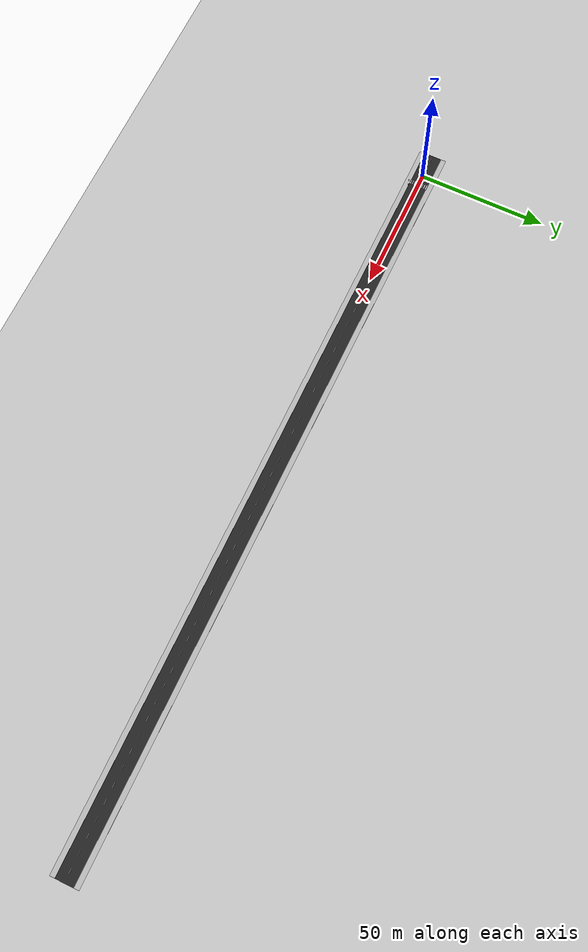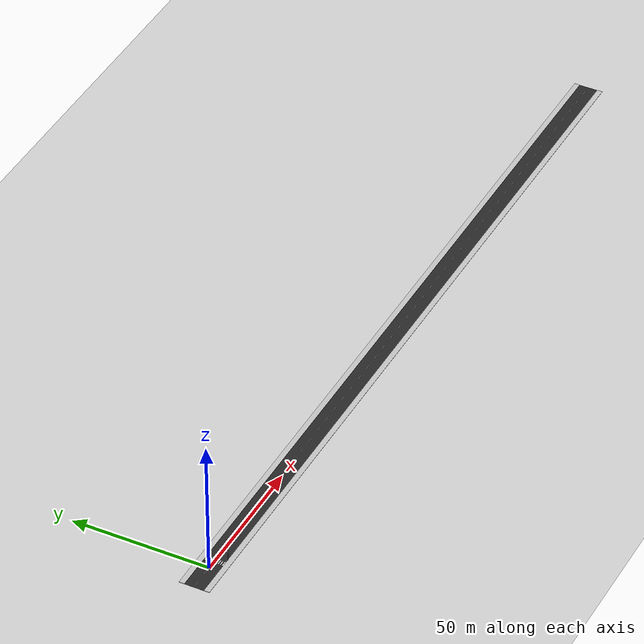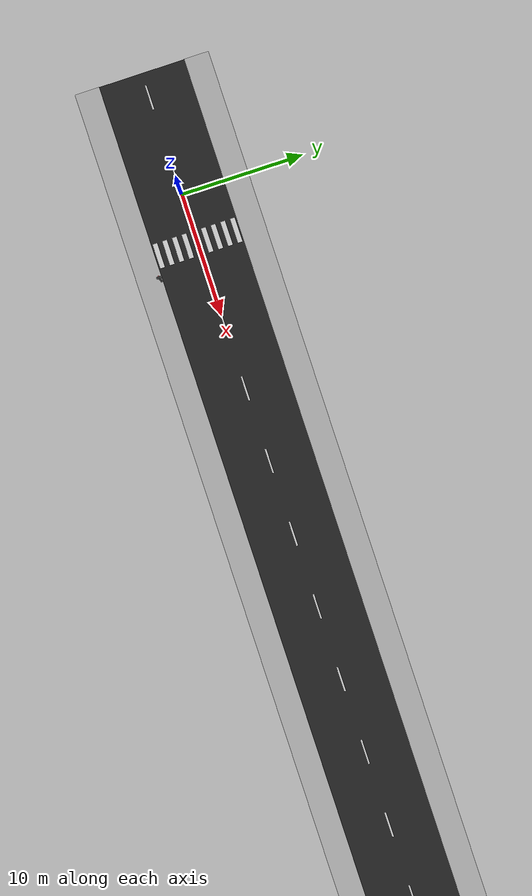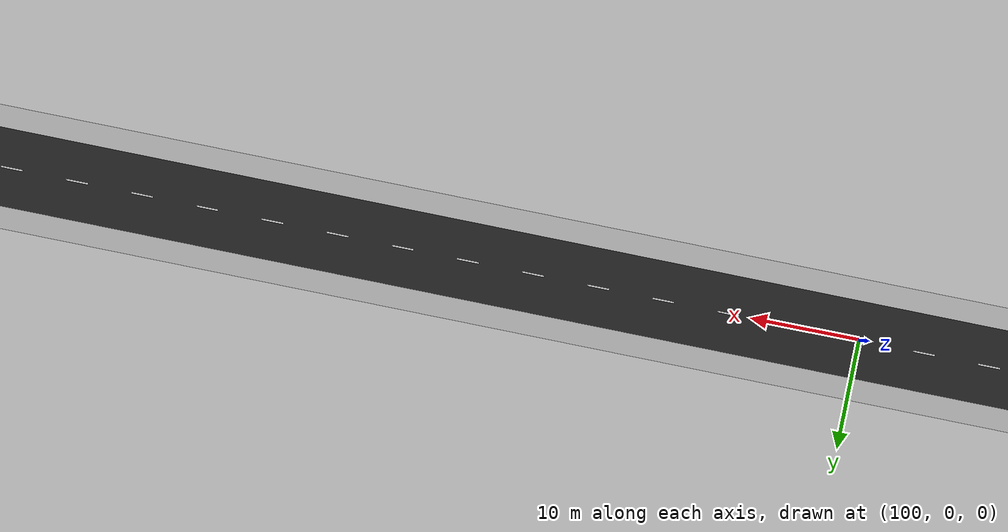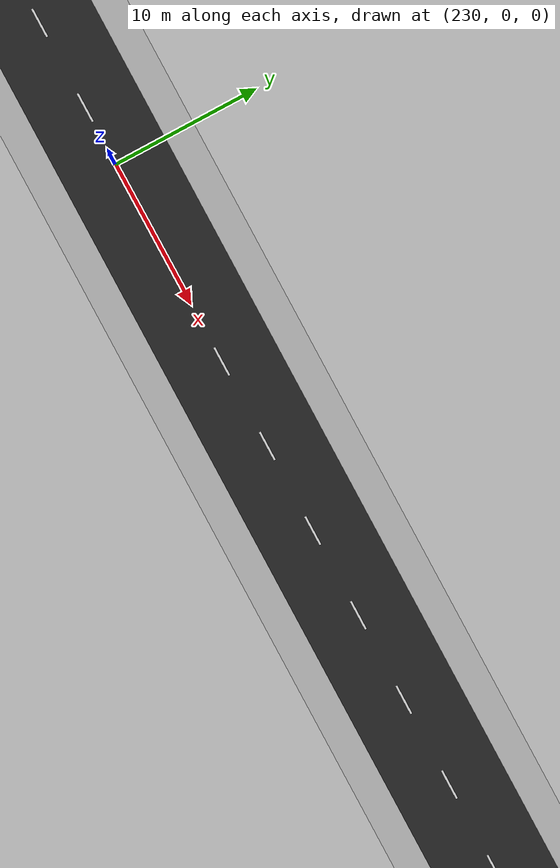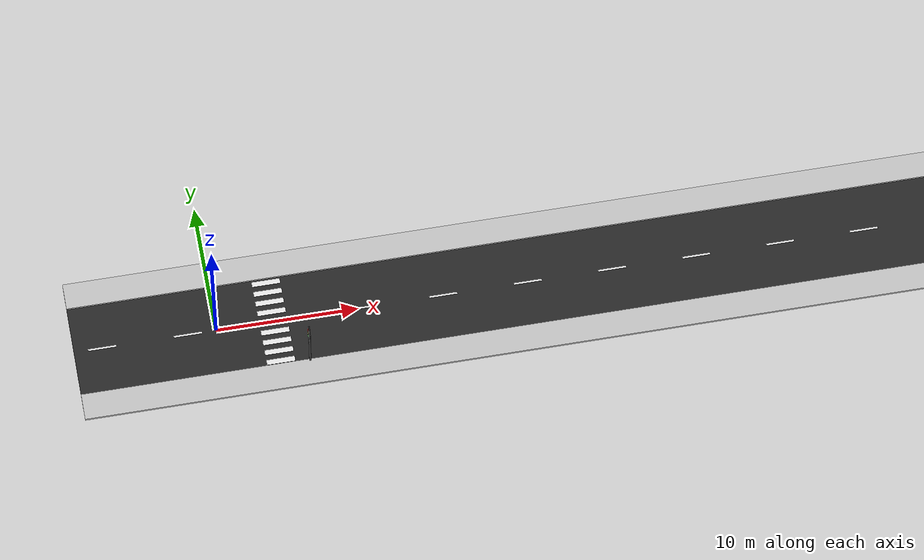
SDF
<sdf version="1.9">
 <world name="street">
  <physics type="ode">
   <max_step_size>0.01</max_step_size>
   <real_time_factor>1.0</real_time_factor>
   <real_time_update_rate>100</real_time_update_rate>
  </physics>
  <gravity>0 0 -9.8</gravity>
  <magnetic_field>6e-06 2.3e-05 -4.2e-05</magnetic_field>
  <atmosphere type="adiabatic"/>
  <scene>
   <grid>false</grid>
   <ambient>0.4 0.4 0.4 1</ambient>
   <background>0.7 0.7 0.7 1</background>
   <shadows>false</shadows>
  </scene>
  <model name="ground_plane">
   <static>true</static>
   <link name="link">
    <collision name="collision">
     <geometry><plane><normal>0 0 1</normal><size>1 1</size></plane></geometry>
    </collision>
    <visual name="visual">
     <geometry><plane><normal>0 0 1</normal><size>500 500</size></plane></geometry>
     <material>
      <ambient>0.8 0.8 0.8 1</ambient>
      <diffuse>0.8 0.8 0.8 1</diffuse>
      <specular>0.8 0.8 0.8 1</specular>
     </material>
    </visual>
    <inertial>
     <mass>1</mass>
     <inertia><ixx>1</ixx><ixy>0</ixy><ixz>0</ixz><iyy>1</iyy><iyz>0</iyz><izz>1</izz></inertia>
    </inertial>
   </link>
  </model>
  <light name="sunUTC" type="directional">
   <pose>0 0 500 0 -0 0</pose>
   <intensity>1</intensity>
   <direction>0.001 0.625 -0.78</direction>
   <diffuse>0.904 0.904 0.904 1</diffuse>
   <specular>0.271 0.271 0.271 1</specular>
   <attenuation><range>2000</range><linear>0</linear><constant>1</constant><quadratic>0</quadratic></attenuation>
   <spot><inner_angle>0</inner_angle><outer_angle>0</outer_angle><falloff>0</falloff></spot>
  </light>
  <model name="street">
   <static>true</static>
   <link name="link">
    <visual name="road_surface">
     <pose>140 0 0.01 0 0 0</pose>
     <geometry><box><size>300 7 0.02</size></box></geometry>
     <material>
      <ambient>0.15 0.15 0.15 1</ambient>
      <diffuse>0.15 0.15 0.15 1</diffuse>
      <specular>0.1 0.1 0.1 1</specular>
     </material>
    </visual>
    <visual name="stripe_1">
     <pose>-8 0 0.025 0 0 0</pose>
     <geometry><box><size>2 0.15 0.01</size></box></geometry>
     <material><ambient>0.9 0.9 0.9 1</ambient><diffuse>0.9 0.9 0.9 1</diffuse></material>
    </visual>
    <visual name="stripe_2">
     <pose>-2 0 0.025 0 0 0</pose>
     <geometry><box><size>2 0.15 0.01</size></box></geometry>
     <material><ambient>0.9 0.9 0.9 1</ambient><diffuse>0.9 0.9 0.9 1</diffuse></material>
    </visual>
    <visual name="crosswalk_1">
     <pose>4 -3.2 0.025 0 0 0</pose>
     <geometry><box><size>2 0.4 0.01</size></box></geometry>
     <material><ambient>0.9 0.9 0.9 1</ambient><diffuse>0.9 0.9 0.9 1</diffuse></material>
    </visual>
    <visual name="crosswalk_2">
     <pose>4 -2.4 0.025 0 0 0</pose>
     <geometry><box><size>2 0.4 0.01</size></box></geometry>
     <material><ambient>0.9 0.9 0.9 1</ambient><diffuse>0.9 0.9 0.9 1</diffuse></material>
    </visual>
    <visual name="crosswalk_3">
     <pose>4 -1.6 0.025 0 0 0</pose>
     <geometry><box><size>2 0.4 0.01</size></box></geometry>
     <material><ambient>0.9 0.9 0.9 1</ambient><diffuse>0.9 0.9 0.9 1</diffuse></material>
    </visual>
    <visual name="crosswalk_4">
     <pose>4 -0.8 0.025 0 0 0</pose>
     <geometry><box><size>2 0.4 0.01</size></box></geometry>
     <material><ambient>0.9 0.9 0.9 1</ambient><diffuse>0.9 0.9 0.9 1</diffuse></material>
    </visual>
    <visual name="crosswalk_5">
     <pose>4 0 0.025 0 0 0</pose>
     <geometry><box><size>2 0.4 0.01</size></box></geometry>
     <material><ambient>0.9 0.9 0.9 1</ambient><diffuse>0.9 0.9 0.9 1</diffuse></material>
    </visual>
    <visual name="crosswalk_6">
     <pose>4 0.8 0.025 0 0 0</pose>
     <geometry><box><size>2 0.4 0.01</size></box></geometry>
     <material><ambient>0.9 0.9 0.9 1</ambient><diffuse>0.9 0.9 0.9 1</diffuse></material>
    </visual>
    <visual name="crosswalk_7">
     <pose>4 1.6 0.025 0 0 0</pose>
     <geometry><box><size>2 0.4 0.01</size></box></geometry>
     <material><ambient>0.9 0.9 0.9 1</ambient><diffuse>0.9 0.9 0.9 1</diffuse></material>
    </visual>
    <visual name="crosswalk_8">
     <pose>4 2.4 0.025 0 0 0</pose>
     <geometry><box><size>2 0.4 0.01</size></box></geometry>
     <material><ambient>0.9 0.9 0.9 1</ambient><diffuse>0.9 0.9 0.9 1</diffuse></material>
    </visual>
    <visual name="crosswalk_9">
     <pose>4 3.2 0.025 0 0 0</pose>
     <geometry><box><size>2 0.4 0.01</size></box></geometry>
     <material><ambient>0.9 0.9 0.9 1</ambient><diffuse>0.9 0.9 0.9 1</diffuse></material>
    </visual>
    <visual name="stripe_4">
     <pose>10 0 0.025 0 0 0</pose>
     <geometry><box><size>2 0.15 0.01</size></box></geometry>
     <material><ambient>0.9 0.9 0.9 1</ambient><diffuse>0.9 0.9 0.9 1</diffuse></material>
    </visual>
    <visual name="stripe_5">
     <pose>16 0 0.025 0 0 0</pose>
     <geometry><box><size>2 0.15 0.01</size></box></geometry>
     <material><ambient>0.9 0.9 0.9 1</ambient><diffuse>0.9 0.9 0.9 1</diffuse></material>
    </visual>
    <visual name="stripe_6">
     <pose>22 0 0.025 0 0 0</pose>
     <geometry><box><size>2 0.15 0.01</size></box></geometry>
     <material><ambient>0.9 0.9 0.9 1</ambient><diffuse>0.9 0.9 0.9 1</diffuse></material>
    </visual>
    <visual name="stripe_7">
     <pose>28 0 0.025 0 0 0</pose>
     <geometry><box><size>2 0.15 0.01</size></box></geometry>
     <material><ambient>0.9 0.9 0.9 1</ambient><diffuse>0.9 0.9 0.9 1</diffuse></material>
    </visual>
    <visual name="stripe_8">
     <pose>34 0 0.025 0 0 0</pose>
     <geometry><box><size>2 0.15 0.01</size></box></geometry>
     <material><ambient>0.9 0.9 0.9 1</ambient><diffuse>0.9 0.9 0.9 1</diffuse></material>
    </visual>
    <visual name="stripe_9">
     <pose>40 0 0.025 0 0 0</pose>
     <geometry><box><size>2 0.15 0.01</size></box></geometry>
     <material><ambient>0.9 0.9 0.9 1</ambient><diffuse>0.9 0.9 0.9 1</diffuse></material>
    </visual>
    <visual name="stripe_10">
     <pose>46 0 0.025 0 0 0</pose>
     <geometry><box><size>2 0.15 0.01</size></box></geometry>
     <material><ambient>0.9 0.9 0.9 1</ambient><diffuse>0.9 0.9 0.9 1</diffuse></material>
    </visual>
    <visual name="stripe_11">
     <pose>52 0 0.025 0 0 0</pose>
     <geometry><box><size>2 0.15 0.01</size></box></geometry>
     <material><ambient>0.9 0.9 0.9 1</ambient><diffuse>0.9 0.9 0.9 1</diffuse></material>
    </visual>
    <visual name="stripe_12">
     <pose>58 0 0.025 0 0 0</pose>
     <geometry><box><size>2 0.15 0.01</size></box></geometry>
     <material><ambient>0.9 0.9 0.9 1</ambient><diffuse>0.9 0.9 0.9 1</diffuse></material>
    </visual>
    <visual name="stripe_13">
     <pose>64 0 0.025 0 0 0</pose>
     <geometry><box><size>2 0.15 0.01</size></box></geometry>
     <material><ambient>0.9 0.9 0.9 1</ambient><diffuse>0.9 0.9 0.9 1</diffuse></material>
    </visual>
    <visual name="stripe_14">
     <pose>70 0 0.025 0 0 0</pose>
     <geometry><box><size>2 0.15 0.01</size></box></geometry>
     <material><ambient>0.9 0.9 0.9 1</ambient><diffuse>0.9 0.9 0.9 1</diffuse></material>
    </visual>
    <visual name="stripe_15">
     <pose>76 0 0.025 0 0 0</pose>
     <geometry><box><size>2 0.15 0.01</size></box></geometry>
     <material><ambient>0.9 0.9 0.9 1</ambient><diffuse>0.9 0.9 0.9 1</diffuse></material>
    </visual>
    <visual name="stripe_16">
     <pose>82 0 0.025 0 0 0</pose>
     <geometry><box><size>2 0.15 0.01</size></box></geometry>
     <material><ambient>0.9 0.9 0.9 1</ambient><diffuse>0.9 0.9 0.9 1</diffuse></material>
    </visual>
    <visual name="stripe_17">
     <pose>88 0 0.025 0 0 0</pose>
     <geometry><box><size>2 0.15 0.01</size></box></geometry>
     <material><ambient>0.9 0.9 0.9 1</ambient><diffuse>0.9 0.9 0.9 1</diffuse></material>
    </visual>
    <visual name="stripe_18">
     <pose>94 0 0.025 0 0 0</pose>
     <geometry><box><size>2 0.15 0.01</size></box></geometry>
     <material><ambient>0.9 0.9 0.9 1</ambient><diffuse>0.9 0.9 0.9 1</diffuse></material>
    </visual>
    <visual name="stripe_19">
     <pose>100 0 0.025 0 0 0</pose>
     <geometry><box><size>2 0.15 0.01</size></box></geometry>
     <material><ambient>0.9 0.9 0.9 1</ambient><diffuse>0.9 0.9 0.9 1</diffuse></material>
    </visual>
    <visual name="stripe_20">
     <pose>106 0 0.025 0 0 0</pose>
     <geometry><box><size>2 0.15 0.01</size></box></geometry>
     <material><ambient>0.9 0.9 0.9 1</ambient><diffuse>0.9 0.9 0.9 1</diffuse></material>
    </visual>
    <visual name="stripe_21">
     <pose>112 0 0.025 0 0 0</pose>
     <geometry><box><size>2 0.15 0.01</size></box></geometry>
     <material><ambient>0.9 0.9 0.9 1</ambient><diffuse>0.9 0.9 0.9 1</diffuse></material>
    </visual>
    <visual name="stripe_22">
     <pose>118 0 0.025 0 0 0</pose>
     <geometry><box><size>2 0.15 0.01</size></box></geometry>
     <material><ambient>0.9 0.9 0.9 1</ambient><diffuse>0.9 0.9 0.9 1</diffuse></material>
    </visual>
    <visual name="stripe_23">
     <pose>124 0 0.025 0 0 0</pose>
     <geometry><box><size>2 0.15 0.01</size></box></geometry>
     <material><ambient>0.9 0.9 0.9 1</ambient><diffuse>0.9 0.9 0.9 1</diffuse></material>
    </visual>
    <visual name="stripe_24">
     <pose>130 0 0.025 0 0 0</pose>
     <geometry><box><size>2 0.15 0.01</size></box></geometry>
     <material><ambient>0.9 0.9 0.9 1</ambient><diffuse>0.9 0.9 0.9 1</diffuse></material>
    </visual>
    <visual name="stripe_25">
     <pose>136 0 0.025 0 0 0</pose>
     <geometry><box><size>2 0.15 0.01</size></box></geometry>
     <material><ambient>0.9 0.9 0.9 1</ambient><diffuse>0.9 0.9 0.9 1</diffuse></material>
    </visual>
    <visual name="stripe_26">
     <pose>142 0 0.025 0 0 0</pose>
     <geometry><box><size>2 0.15 0.01</size></box></geometry>
     <material><ambient>0.9 0.9 0.9 1</ambient><diffuse>0.9 0.9 0.9 1</diffuse></material>
    </visual>
    <visual name="stripe_27">
     <pose>148 0 0.025 0 0 0</pose>
     <geometry><box><size>2 0.15 0.01</size></box></geometry>
     <material><ambient>0.9 0.9 0.9 1</ambient><diffuse>0.9 0.9 0.9 1</diffuse></material>
    </visual>
    <visual name="stripe_28">
     <pose>154 0 0.025 0 0 0</pose>
     <geometry><box><size>2 0.15 0.01</size></box></geometry>
     <material><ambient>0.9 0.9 0.9 1</ambient><diffuse>0.9 0.9 0.9 1</diffuse></material>
    </visual>
    <visual name="stripe_29">
     <pose>160 0 0.025 0 0 0</pose>
     <geometry><box><size>2 0.15 0.01</size></box></geometry>
     <material><ambient>0.9 0.9 0.9 1</ambient><diffuse>0.9 0.9 0.9 1</diffuse></material>
    </visual>
    <visual name="stripe_30">
     <pose>166 0 0.025 0 0 0</pose>
     <geometry><box><size>2 0.15 0.01</size></box></geometry>
     <material><ambient>0.9 0.9 0.9 1</ambient><diffuse>0.9 0.9 0.9 1</diffuse></material>
    </visual>
    <visual name="stripe_31">
     <pose>172 0 0.025 0 0 0</pose>
     <geometry><box><size>2 0.15 0.01</size></box></geometry>
     <material><ambient>0.9 0.9 0.9 1</ambient><diffuse>0.9 0.9 0.9 1</diffuse></material>
    </visual>
    <visual name="stripe_32">
     <pose>178 0 0.025 0 0 0</pose>
     <geometry><box><size>2 0.15 0.01</size></box></geometry>
     <material><ambient>0.9 0.9 0.9 1</ambient><diffuse>0.9 0.9 0.9 1</diffuse></material>
    </visual>
    <visual name="stripe_33">
     <pose>184 0 0.025 0 0 0</pose>
     <geometry><box><size>2 0.15 0.01</size></box></geometry>
     <material><ambient>0.9 0.9 0.9 1</ambient><diffuse>0.9 0.9 0.9 1</diffuse></material>
    </visual>
    <visual name="stripe_34">
     <pose>190 0 0.025 0 0 0</pose>
     <geometry><box><size>2 0.15 0.01</size></box></geometry>
     <material><ambient>0.9 0.9 0.9 1</ambient><diffuse>0.9 0.9 0.9 1</diffuse></material>
    </visual>
    <visual name="stripe_35">
     <pose>196 0 0.025 0 0 0</pose>
     <geometry><box><size>2 0.15 0.01</size></box></geometry>
     <material><ambient>0.9 0.9 0.9 1</ambient><diffuse>0.9 0.9 0.9 1</diffuse></material>
    </visual>
    <visual name="stripe_36">
     <pose>202 0 0.025 0 0 0</pose>
     <geometry><box><size>2 0.15 0.01</size></box></geometry>
     <material><ambient>0.9 0.9 0.9 1</ambient><diffuse>0.9 0.9 0.9 1</diffuse></material>
    </visual>
    <visual name="stripe_37">
     <pose>208 0 0.025 0 0 0</pose>
     <geometry><box><size>2 0.15 0.01</size></box></geometry>
     <material><ambient>0.9 0.9 0.9 1</ambient><diffuse>0.9 0.9 0.9 1</diffuse></material>
    </visual>
    <visual name="stripe_38">
     <pose>214 0 0.025 0 0 0</pose>
     <geometry><box><size>2 0.15 0.01</size></box></geometry>
     <material><ambient>0.9 0.9 0.9 1</ambient><diffuse>0.9 0.9 0.9 1</diffuse></material>
    </visual>
    <visual name="stripe_39">
     <pose>220 0 0.025 0 0 0</pose>
     <geometry><box><size>2 0.15 0.01</size></box></geometry>
     <material><ambient>0.9 0.9 0.9 1</ambient><diffuse>0.9 0.9 0.9 1</diffuse></material>
    </visual>
    <visual name="stripe_40">
     <pose>226 0 0.025 0 0 0</pose>
     <geometry><box><size>2 0.15 0.01</size></box></geometry>
     <material><ambient>0.9 0.9 0.9 1</ambient><diffuse>0.9 0.9 0.9 1</diffuse></material>
    </visual>
    <visual name="stripe_41">
     <pose>232 0 0.025 0 0 0</pose>
     <geometry><box><size>2 0.15 0.01</size></box></geometry>
     <material><ambient>0.9 0.9 0.9 1</ambient><diffuse>0.9 0.9 0.9 1</diffuse></material>
    </visual>
    <visual name="stripe_42">
     <pose>238 0 0.025 0 0 0</pose>
     <geometry><box><size>2 0.15 0.01</size></box></geometry>
     <material><ambient>0.9 0.9 0.9 1</ambient><diffuse>0.9 0.9 0.9 1</diffuse></material>
    </visual>
    <visual name="stripe_43">
     <pose>244 0 0.025 0 0 0</pose>
     <geometry><box><size>2 0.15 0.01</size></box></geometry>
     <material><ambient>0.9 0.9 0.9 1</ambient><diffuse>0.9 0.9 0.9 1</diffuse></material>
    </visual>
    <visual name="stripe_44">
     <pose>250 0 0.025 0 0 0</pose>
     <geometry><box><size>2 0.15 0.01</size></box></geometry>
     <material><ambient>0.9 0.9 0.9 1</ambient><diffuse>0.9 0.9 0.9 1</diffuse></material>
    </visual>
    <visual name="stripe_45">
     <pose>256 0 0.025 0 0 0</pose>
     <geometry><box><size>2 0.15 0.01</size></box></geometry>
     <material><ambient>0.9 0.9 0.9 1</ambient><diffuse>0.9 0.9 0.9 1</diffuse></material>
    </visual>
    <visual name="stripe_46">
     <pose>262 0 0.025 0 0 0</pose>
     <geometry><box><size>2 0.15 0.01</size></box></geometry>
     <material><ambient>0.9 0.9 0.9 1</ambient><diffuse>0.9 0.9 0.9 1</diffuse></material>
    </visual>
    <visual name="stripe_47">
     <pose>268 0 0.025 0 0 0</pose>
     <geometry><box><size>2 0.15 0.01</size></box></geometry>
     <material><ambient>0.9 0.9 0.9 1</ambient><diffuse>0.9 0.9 0.9 1</diffuse></material>
    </visual>
    <visual name="stripe_48">
     <pose>274 0 0.025 0 0 0</pose>
     <geometry><box><size>2 0.15 0.01</size></box></geometry>
     <material><ambient>0.9 0.9 0.9 1</ambient><diffuse>0.9 0.9 0.9 1</diffuse></material>
    </visual>
    <visual name="stripe_49">
     <pose>280 0 0.025 0 0 0</pose>
     <geometry><box><size>2 0.15 0.01</size></box></geometry>
     <material><ambient>0.9 0.9 0.9 1</ambient><diffuse>0.9 0.9 0.9 1</diffuse></material>
    </visual>
    <visual name="stripe_50">
     <pose>286 0 0.025 0 0 0</pose>
     <geometry><box><size>2 0.15 0.01</size></box></geometry>
     <material><ambient>0.9 0.9 0.9 1</ambient><diffuse>0.9 0.9 0.9 1</diffuse></material>
    </visual>
    <visual name="sidewalk_left">
     <pose>140 4.5 0.075 0 0 0</pose>
     <geometry><box><size>300 2 0.15</size></box></geometry>
     <material><ambient>0.75 0.75 0.75 1</ambient><diffuse>0.75 0.75 0.75 1</diffuse></material>
    </visual>
    <visual name="sidewalk_right">
     <pose>140 -4.5 0.075 0 0 0</pose>
     <geometry><box><size>300 2 0.15</size></box></geometry>
     <material><ambient>0.75 0.75 0.75 1</ambient><diffuse>0.75 0.75 0.75 1</diffuse></material>
    </visual>
   </link>
  </model>
  <model name="traffic_light">
   <static>true</static>
   <pose>6 -3.6 0 0 0 0</pose>
   <link name="link">
    <visual name="pole">
     <pose>0 0 2 0 0 0</pose>
     <geometry><cylinder><radius>0.07</radius><length>4</length></cylinder></geometry>
     <material><ambient>0.3 0.3 0.3 1</ambient><diffuse>0.3 0.3 0.3 1</diffuse></material>
    </visual>
    <collision name="pole_collision">
     <pose>0 0 2 0 0 0</pose>
     <geometry><cylinder><radius>0.07</radius><length>4</length></cylinder></geometry>
    </collision>
    <visual name="head">
     <pose>0 0 3.8 0 0 0</pose>
     <geometry><box><size>0.1 0.4 1.0</size></box></geometry>
     <material><ambient>0.1 0.1 0.1 1</ambient><diffuse>0.1 0.1 0.1 1</diffuse></material>
    </visual>
    <visual name="red_light">
     <pose>-0.07 0 4.15 0 1.5708 0</pose>
     <geometry><cylinder><radius>0.1</radius><length>0.04</length></cylinder></geometry>
     <material><ambient>0.9 0 0 1</ambient><diffuse>0.9 0 0 1</diffuse><emissive>0.8 0 0 1</emissive></material>
    </visual>
    <visual name="yellow_light">
     <pose>-0.07 0 3.8 0 1.5708 0</pose>
     <geometry><cylinder><radius>0.1</radius><length>0.04</length></cylinder></geometry>
     <material><ambient>0.3 0.25 0 1</ambient><diffuse>0.3 0.25 0 1</diffuse></material>
    </visual>
    <visual name="green_light">
     <pose>-0.07 0 3.45 0 1.5708 0</pose>
     <geometry><cylinder><radius>0.1</radius><length>0.04</length></cylinder></geometry>
     <material><ambient>0 0.25 0 1</ambient><diffuse>0 0.25 0 1</diffuse></material>
    </visual>
   </link>
  </model>
  <spherical_coordinates>
   <surface_model>EARTH_WGS84</surface_model>
   <world_frame_orientation>ENU</world_frame_orientation>
   <latitude_deg>47.397971057728974</latitude_deg>
   <longitude_deg>8.546163739800146</longitude_deg>
   <elevation>0</elevation>
  </spherical_coordinates>
 </world>
</sdf>
